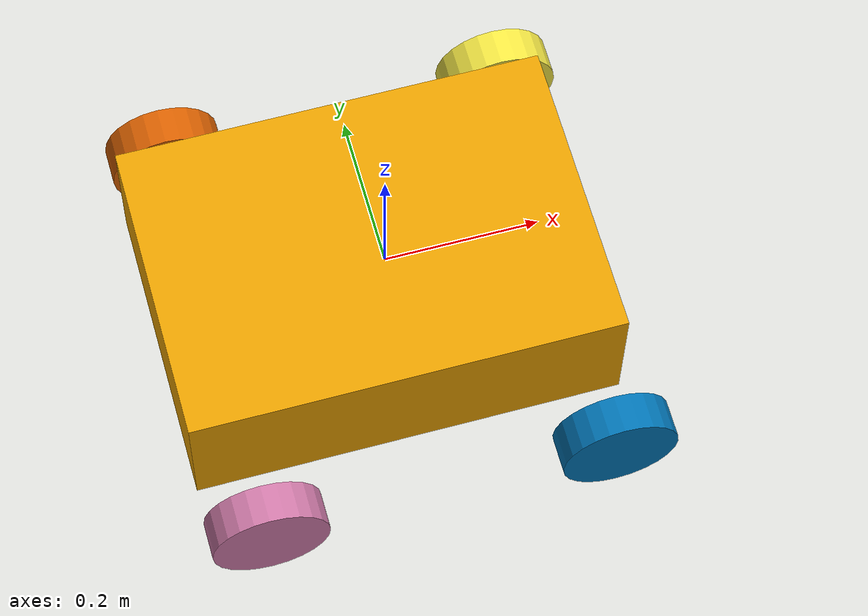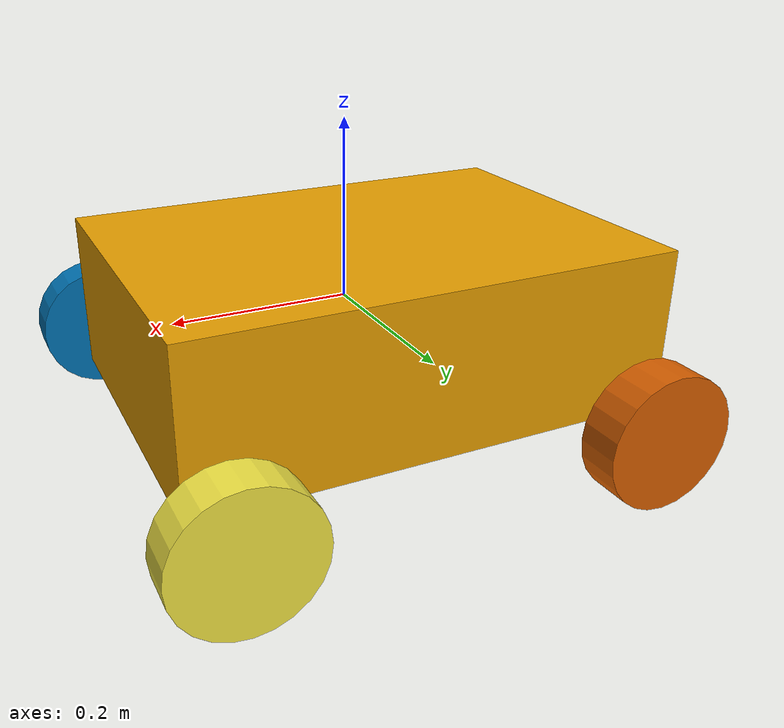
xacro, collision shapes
<?xml version="1.0"?>
<robot name="scout_mini_omni" xmlns:xacro="http://ros.org/wiki/xacro">
  <xacro:include filename="$(find scout_description)/urdf/scout_mini/scout_mini_omni_wheel.xacro"/>
  <xacro:property name="wheelbase" value="0.4526"/>
  <xacro:property name="track" value="0.5456008"/>
  <xacro:property name="wheel_vertical_offset" value="-0.096"/>
  <xacro:property name="wheel_radius" value="0.0754335"/>
  <xacro:property name="body_x_size" value="0.5539"/>
  <xacro:property name="body_y_size" value="0.3923"/>
  <xacro:property name="body_z_size" value="0.18235"/>

  <link name="base_link">
    <visual>
      <origin xyz="0 0 0" rpy="0 0 0"/>
      <geometry>
        <mesh filename="package://scout_description/meshes/scout_mini_omni/chassis.dae"/>
      </geometry>
    </visual>
    <visual>
      <origin xyz="0 0 0" rpy="0 0 0"/>
      <geometry><mesh filename="package://scout_description/meshes/scout_mini_omni/front_left_motor.dae"/></geometry>
    </visual>
    <visual>
      <origin xyz="0 0 0" rpy="0 0 0"/>
      <geometry><mesh filename="package://scout_description/meshes/scout_mini_omni/front_right_motor.dae"/></geometry>
    </visual>
    <visual>
      <origin xyz="0 0 0" rpy="0 0 0"/>
      <geometry><mesh filename="package://scout_description/meshes/scout_mini_omni/rear_left_motor.dae"/></geometry>
    </visual>
    <visual>
      <origin xyz="0 0 0" rpy="0 0 0"/>
      <geometry><mesh filename="package://scout_description/meshes/scout_mini_omni/rear_right_motor.dae"/></geometry>
    </visual>

    <!-- Simplified body collision; use a footprint calibrated to the robot for Nav2. -->
    <collision>
      <origin xyz="-0.02132 0 -0.02201" rpy="0 0 0"/>
      <geometry>
        <box size="${body_x_size} ${body_y_size} ${body_z_size}"/>
      </geometry>
    </collision>
  </link>

  <!-- Existing ROS frame names are retained for TF/Nav2 compatibility. -->
  <link name="base_footprint"/>
  <joint name="base_footprint_joint" type="fixed">
    <origin xyz="0 0 ${wheel_vertical_offset - wheel_radius}" rpy="0 0 0"/>
    <parent link="base_link"/>
    <child link="base_footprint"/>
  </joint>

  <link name="inertial_link">
    <inertial>
      <origin xyz="0 0 0" rpy="0 0 0"/>
      <mass value="18"/>
      <inertia ixx="0.2779" ixy="0" ixz="0"
               iyy="0.5206" iyz="0" izz="0.6994"/>
    </inertial>
  </link>
  <joint name="inertial_joint" type="fixed">
    <origin xyz="0 0 0" rpy="0 0 0"/>
    <parent link="base_link"/>
    <child link="inertial_link"/>
  </joint>

  <!-- Separate corner-specific meshes preserve the roller orientation. -->
  <xacro:scout_mini_omni_wheel wheel_prefix="front_left" mesh_name="front_left.dae" axis_xyz="0 -1 0">
    <origin xyz="${wheelbase/2} ${track/2} ${wheel_vertical_offset}" rpy="0 0 0"/>
  </xacro:scout_mini_omni_wheel>
  <xacro:scout_mini_omni_wheel wheel_prefix="front_right" mesh_name="front_right.dae" axis_xyz="0 1 0">
    <origin xyz="${wheelbase/2} ${-track/2} ${wheel_vertical_offset}" rpy="0 0 0"/>
  </xacro:scout_mini_omni_wheel>
  <xacro:scout_mini_omni_wheel wheel_prefix="rear_left" mesh_name="rear_left.dae" axis_xyz="0 -1 0">
    <origin xyz="${-wheelbase/2} ${track/2} ${wheel_vertical_offset}" rpy="0 0 0"/>
  </xacro:scout_mini_omni_wheel>
  <xacro:scout_mini_omni_wheel wheel_prefix="rear_right" mesh_name="rear_right.dae" axis_xyz="0 1 0">
    <origin xyz="${-wheelbase/2} ${-track/2} ${wheel_vertical_offset}" rpy="0 0 0"/>
  </xacro:scout_mini_omni_wheel>

  <!-- Legacy omni mounting frames, useful for fixed sensor transforms. -->
  <link name="front_mount"/>
  <joint name="front_mount_joint" type="fixed">
    <origin xyz="0.175 0 0.069" rpy="0 0 0"/>
    <parent link="base_link"/>
    <child link="front_mount"/>
  </joint>
  <link name="rear_mount"/>
  <joint name="rear_mount_joint" type="fixed">
    <origin xyz="-0.175 0 0.069" rpy="0 0 0"/>
    <parent link="base_link"/>
    <child link="rear_mount"/>
  </joint>
</robot>

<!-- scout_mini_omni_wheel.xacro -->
<robot name="scout_mini_omni_wheel" xmlns:xacro="http://ros.org/wiki/xacro">
  <xacro:macro name="scout_mini_omni_wheel" params="wheel_prefix mesh_name axis_xyz *joint_pose">
    <link name="${wheel_prefix}_wheel_link">
      <inertial>
        <origin xyz="0 0 0" rpy="0 0 0"/>
        <mass value="1.0"/>
        <inertia ixx="0.002288" ixy="0" ixz="0"
                 iyy="0.002890" iyz="0" izz="0.002288"/>
      </inertial>
      <visual>
        <origin xyz="0 0 0" rpy="0 0 0"/>
        <geometry>
          <mesh filename="package://scout_description/meshes/scout_mini_omni/${mesh_name}"/>
        </geometry>
      </visual>
      <collision>
        <origin xyz="0 0 0" rpy="1.57079632679 0 0"/>
        <geometry>
          <cylinder radius="0.0754335" length="0.0482"/>
        </geometry>
      </collision>
    </link>
    <joint name="${wheel_prefix}_wheel" type="continuous">
      <parent link="base_link"/>
      <child link="${wheel_prefix}_wheel_link"/>
      <xacro:insert_block name="joint_pose"/>
      <axis xyz="${axis_xyz}"/>
    </joint>
  </xacro:macro>
</robot>
